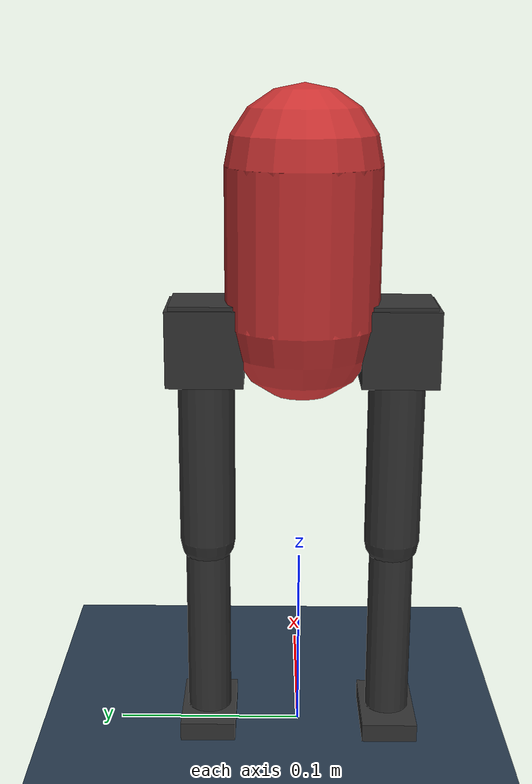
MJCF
<mujoco model="nadir">
  <compiler angle="radian" meshdir="meshes/" autolimits="true" />

  <option timestep="0.002" iterations="10" ls_iterations="8" solver="Newton" tolerance="1e-8" />

  <asset>
    <texture type="skybox" builtin="gradient" rgb1="0.3 0.5 0.7" rgb2="0 0 0" width="512" height="512" />
    <texture name="texplane" type="2d" builtin="checker" rgb1=".2 .3 .4" rgb2=".1 0.15 0.2" width="512" height="512" mark="cross" markrgb=".8 .8 .8" />
    <material name="matplane" reflectance="0.3" texture="texplane" texrepeat="1 1" texuniform="true" />
    <material name="robot_mat" rgba="0.2 0.2 0.2 1" />
  </asset>

  <default>
    <joint type="hinge" armature="0.01" damping="0.1" frictionloss="0.02" />
  </default>

  <worldbody>
    <light directional="true" diffuse=".8 .8 .8" specular=".2 .2 .2" pos="0 0 5" dir="0 0 -1" />
    <geom name="floor" type="plane" size="0 0 1" material="matplane" condim="3" friction="1.0 0.005 0.0001" />

    <body name="torso" pos="0 0 0.27">
      <freejoint name="root" />
      <geom name="torso_geom" type="capsule" size="0.04 0.04" rgba="0.8 0.2 0.2 1" mass="0.5" />
      <site name="imu_site" pos="0 0 0" size="0.01" />
      <camera name="tracking_cam" pos="0 -1.5 0.5" xyaxes="1 0 0 0 1 2" mode="trackcom" />

      <!-- Right Leg -->
      <body name="hip_yaw_link_r" pos="0 -0.05 -0.04">
        <joint name="hip_yaw_r" axis="0 0 1" range="-0.6 0.6" />
        <geom type="box" size="0.018 0.018 0.012" mass="0.04" material="robot_mat" />

        <body name="hip_bracket_r" pos="0 0 -0.01">
          <joint name="hip_pitch_r" axis="0 1 0" range="-1.2 1.2" />
          <geom type="box" size="0.02 0.02 0.02" mass="0.05" material="robot_mat" />

        <body name="upper_leg_r" pos="0 0 -0.01">
          <joint name="hip_roll_r" axis="1 0 0" range="-0.4 0.4" />
          <geom type="capsule" size="0.015 0.05" pos="0 0 -0.05" mass="0.15" material="robot_mat" />

          <body name="lower_leg_r" pos="0 0 -0.1">
            <joint name="knee_r" axis="0 1 0" range="-0.1 2.0" />
            <geom type="capsule" size="0.012 0.05" pos="0 0 -0.05" mass="0.12" material="robot_mat" />

            <body name="foot_r" pos="0 0 -0.1">
              <joint name="ankle_pitch_r" axis="0 1 0" range="-0.8 0.8" />
              <joint name="ankle_roll_r" axis="1 0 0" range="-0.3 0.3" />
              <geom name="foot_geom_r" type="box" size="0.025 0.015 0.005" pos="0 0 -0.005" mass="0.08" material="robot_mat" friction="1.0 0.005 0.0001" />
              <site name="foot_contact_r" pos="0 0 -0.01" size="0.01" type="sphere" rgba="0 1 0 0" />
            </body>
          </body>
        </body>
        </body>
      </body>

      <!-- Left Leg -->
      <body name="hip_yaw_link_l" pos="0 0.05 -0.04">
        <joint name="hip_yaw_l" axis="0 0 1" range="-0.6 0.6" />
        <geom type="box" size="0.018 0.018 0.012" mass="0.04" material="robot_mat" />

        <body name="hip_bracket_l" pos="0 0 -0.01">
          <joint name="hip_pitch_l" axis="0 1 0" range="-1.2 1.2" />
          <geom type="box" size="0.02 0.02 0.02" mass="0.05" material="robot_mat" />

        <body name="upper_leg_l" pos="0 0 -0.01">
          <joint name="hip_roll_l" axis="1 0 0" range="-0.4 0.4" />
          <geom type="capsule" size="0.015 0.05" pos="0 0 -0.05" mass="0.15" material="robot_mat" />

          <body name="lower_leg_l" pos="0 0 -0.1">
            <joint name="knee_l" axis="0 1 0" range="-0.1 2.0" />
            <geom type="capsule" size="0.012 0.05" pos="0 0 -0.05" mass="0.12" material="robot_mat" />

            <body name="foot_l" pos="0 0 -0.1">
              <joint name="ankle_pitch_l" axis="0 1 0" range="-0.8 0.8" />
              <joint name="ankle_roll_l" axis="1 0 0" range="-0.3 0.3" />
              <geom name="foot_geom_l" type="box" size="0.025 0.015 0.005" pos="0 0 -0.005" mass="0.08" material="robot_mat" friction="1.0 0.005 0.0001" />
              <site name="foot_contact_l" pos="0 0 -0.01" size="0.01" type="sphere" rgba="0 1 0 0" />
            </body>
          </body>
        </body>
        </body>
      </body>

    </body>
  </worldbody>

  <actuator>
    <position name="hip_yaw_r"     joint="hip_yaw_r"     ctrlrange="-0.6 0.6" forcerange="-3 3" kp="40" kv="2" />
    <position name="hip_pitch_r"   joint="hip_pitch_r"   ctrlrange="-1.2 1.2" forcerange="-3 3" kp="40" kv="2" />
    <position name="hip_roll_r"    joint="hip_roll_r"    ctrlrange="-0.4 0.4" forcerange="-3 3" kp="40" kv="2" />
    <position name="knee_r"        joint="knee_r"        ctrlrange="-0.1 2.0" forcerange="-3 3" kp="40" kv="2" />
    <position name="ankle_pitch_r" joint="ankle_pitch_r" ctrlrange="-0.8 0.8" forcerange="-3 3" kp="40" kv="2" />
    <position name="ankle_roll_r"  joint="ankle_roll_r"  ctrlrange="-0.3 0.3" forcerange="-3 3" kp="40" kv="2" />
    <position name="hip_yaw_l"     joint="hip_yaw_l"     ctrlrange="-0.6 0.6" forcerange="-3 3" kp="40" kv="2" />
    <position name="hip_pitch_l"   joint="hip_pitch_l"   ctrlrange="-1.2 1.2" forcerange="-3 3" kp="40" kv="2" />
    <position name="hip_roll_l"    joint="hip_roll_l"    ctrlrange="-0.4 0.4" forcerange="-3 3" kp="40" kv="2" />
    <position name="knee_l"        joint="knee_l"        ctrlrange="-0.1 2.0" forcerange="-3 3" kp="40" kv="2" />
    <position name="ankle_pitch_l" joint="ankle_pitch_l" ctrlrange="-0.8 0.8" forcerange="-3 3" kp="40" kv="2" />
    <position name="ankle_roll_l"  joint="ankle_roll_l"  ctrlrange="-0.3 0.3" forcerange="-3 3" kp="40" kv="2" />
  </actuator>

  <sensor>
    <accelerometer name="accel" site="imu_site" />
    <gyro name="gyro" site="imu_site" />
  </sensor>
</mujoco>
